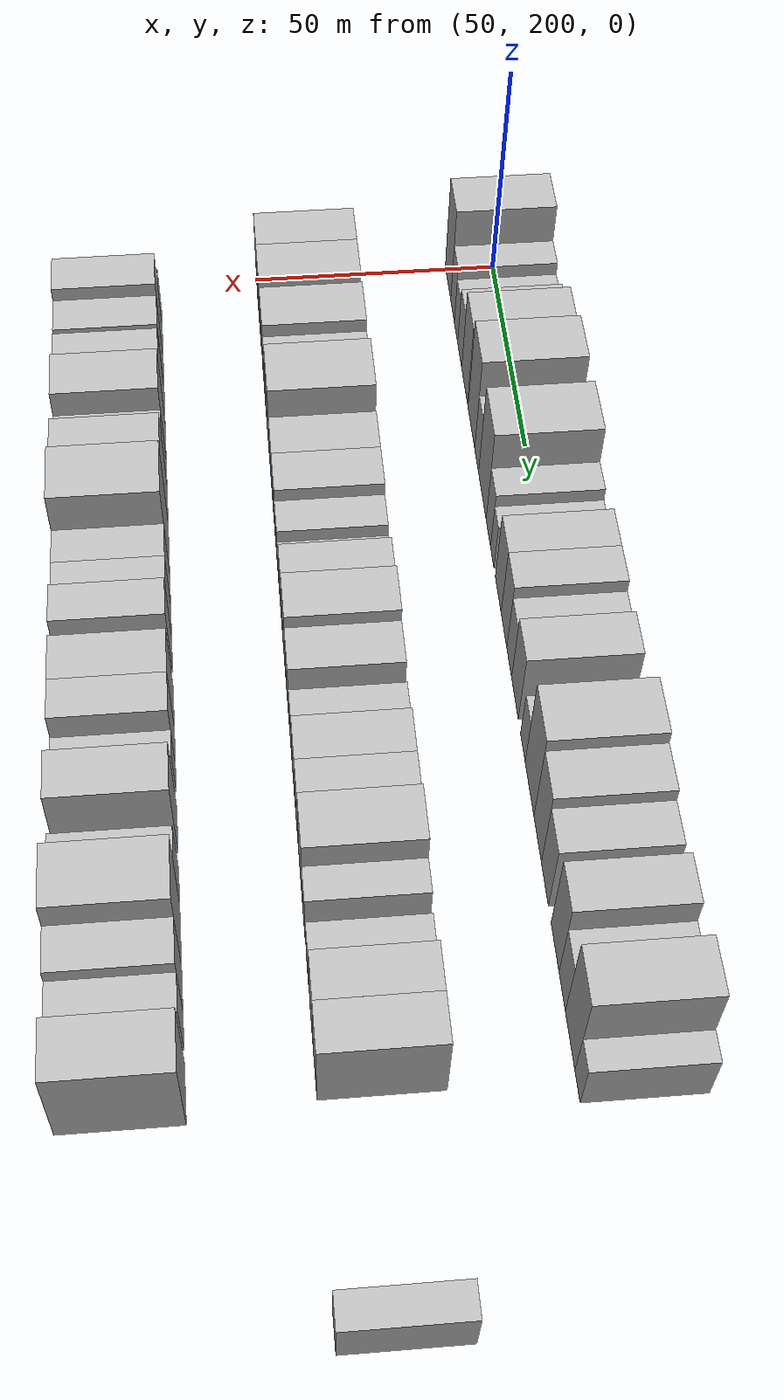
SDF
<sdf version="1.6">
 <world name="default">
  <model name="building_65">
   <static>1</static>
   <pose>50.0000 203.9485 0 0.000000 0.000000 0.000000</pose>
   <link name="link">
    <pose>0 0 12.00 0 0 0</pose>
    <collision name="collision"><geometry><box><size>20.0000 9.9118 24.0000</size></box></geometry></collision>
    <visual name="visual">
     <cast_shadows>0</cast_shadows>
     <geometry><box><size>20.0000 9.9118 24.0000</size></box></geometry>
     <material>
      <script>
       <uri>model://HANNAS_wall/materials/scripts</uri>
       <uri>model://HANNAS_wall/materials/textures</uri>
       <name>vrc/HANNAS_wall</name>
      </script>
     </material>
    </visual>
   </link>
  </model>
  <model name="building_66">
   <static>1</static>
   <pose>50.0000 212.1673 0 0.000000 0.000000 0.000000</pose>
   <link name="link">
    <pose>0 0 7.50 0 0 0</pose>
    <collision name="collision"><geometry><box><size>20.0000 6.5257 15.0000</size></box></geometry></collision>
    <visual name="visual">
     <cast_shadows>0</cast_shadows>
     <geometry><box><size>20.0000 6.5257 15.0000</size></box></geometry>
     <material>
      <script>
       <uri>model://HANNAS_wall/materials/scripts</uri>
       <uri>model://HANNAS_wall/materials/textures</uri>
       <name>vrc/HANNAS_wall</name>
      </script>
     </material>
    </visual>
   </link>
  </model>
  <model name="building_67">
   <static>1</static>
   <pose>50.0000 218.3779 0 0.000000 0.000000 0.000000</pose>
   <link name="link">
    <pose>0 0 6.00 0 0 0</pose>
    <collision name="collision"><geometry><box><size>20.0000 5.8955 12.0000</size></box></geometry></collision>
    <visual name="visual">
     <cast_shadows>0</cast_shadows>
     <geometry><box><size>20.0000 5.8955 12.0000</size></box></geometry>
     <material>
      <script>
       <uri>model://HANNAS_wall/materials/scripts</uri>
       <uri>model://HANNAS_wall/materials/textures</uri>
       <name>vrc/HANNAS_wall</name>
      </script>
     </material>
    </visual>
   </link>
  </model>
  <model name="building_68">
   <static>1</static>
   <pose>50.0000 224.8252 0 0.000000 0.000000 0.000000</pose>
   <link name="link">
    <pose>0 0 7.50 0 0 0</pose>
    <collision name="collision"><geometry><box><size>20.0000 6.9992 15.0000</size></box></geometry></collision>
    <visual name="visual">
     <cast_shadows>0</cast_shadows>
     <geometry><box><size>20.0000 6.9992 15.0000</size></box></geometry>
     <material>
      <script>
       <uri>model://HANNAS_wall/materials/scripts</uri>
       <uri>model://HANNAS_wall/materials/textures</uri>
       <name>vrc/HANNAS_wall</name>
      </script>
     </material>
    </visual>
   </link>
  </model>
  <model name="building_69">
   <static>1</static>
   <pose>50.0000 233.1686 0 0.000000 0.000000 0.000000</pose>
   <link name="link">
    <pose>0 0 10.50 0 0 0</pose>
    <collision name="collision"><geometry><box><size>20.0000 9.6877 21.0000</size></box></geometry></collision>
    <visual name="visual">
     <cast_shadows>0</cast_shadows>
     <geometry><box><size>20.0000 9.6877 21.0000</size></box></geometry>
     <material>
      <script>
       <uri>model://HANNAS_wall/materials/scripts</uri>
       <uri>model://HANNAS_wall/materials/textures</uri>
       <name>vrc/HANNAS_wall</name>
      </script>
     </material>
    </visual>
   </link>
  </model>
  <model name="building_70">
   <static>1</static>
   <pose>50.0000 244.3848 0 0.000000 0.000000 0.000000</pose>
   <link name="link">
    <pose>0 0 12.00 0 0 0</pose>
    <collision name="collision"><geometry><box><size>20.0000 10.7445 24.0000</size></box></geometry></collision>
    <visual name="visual">
     <cast_shadows>0</cast_shadows>
     <geometry><box><size>20.0000 10.7445 24.0000</size></box></geometry>
     <material>
      <script>
       <uri>model://HANNAS_wall/materials/scripts</uri>
       <uri>model://HANNAS_wall/materials/textures</uri>
       <name>vrc/HANNAS_wall</name>
      </script>
     </material>
    </visual>
   </link>
  </model>
  <model name="building_71">
   <static>1</static>
   <pose>50.0000 252.8541 0 0.000000 0.000000 0.000000</pose>
   <link name="link">
    <pose>0 0 7.50 0 0 0</pose>
    <collision name="collision"><geometry><box><size>20.0000 6.1942 15.0000</size></box></geometry></collision>
    <visual name="visual">
     <cast_shadows>0</cast_shadows>
     <geometry><box><size>20.0000 6.1942 15.0000</size></box></geometry>
     <material>
      <script>
       <uri>model://HANNAS_wall/materials/scripts</uri>
       <uri>model://HANNAS_wall/materials/textures</uri>
       <name>vrc/HANNAS_wall</name>
      </script>
     </material>
    </visual>
   </link>
  </model>
  <model name="building_72">
   <static>1</static>
   <pose>50.0000 261.8027 0 0.000000 0.000000 0.000000</pose>
   <link name="link">
    <pose>0 0 12.00 0 0 0</pose>
    <collision name="collision"><geometry><box><size>20.0000 11.7029 24.0000</size></box></geometry></collision>
    <visual name="visual">
     <cast_shadows>0</cast_shadows>
     <geometry><box><size>20.0000 11.7029 24.0000</size></box></geometry>
     <material>
      <script>
       <uri>model://HANNAS_wall/materials/scripts</uri>
       <uri>model://HANNAS_wall/materials/textures</uri>
       <name>vrc/HANNAS_wall</name>
      </script>
     </material>
    </visual>
   </link>
  </model>
  <model name="building_73">
   <static>1</static>
   <pose>50.0000 270.9502 0 0.000000 0.000000 0.000000</pose>
   <link name="link">
    <pose>0 0 7.50 0 0 0</pose>
    <collision name="collision"><geometry><box><size>20.0000 6.5921 15.0000</size></box></geometry></collision>
    <visual name="visual">
     <cast_shadows>0</cast_shadows>
     <geometry><box><size>20.0000 6.5921 15.0000</size></box></geometry>
     <material>
      <script>
       <uri>model://HANNAS_wall/materials/scripts</uri>
       <uri>model://HANNAS_wall/materials/textures</uri>
       <name>vrc/HANNAS_wall</name>
      </script>
     </material>
    </visual>
   </link>
  </model>
  <model name="building_74">
   <static>1</static>
   <pose>50.0000 276.7203 0 0.000000 0.000000 0.000000</pose>
   <link name="link">
    <pose>0 0 6.00 0 0 0</pose>
    <collision name="collision"><geometry><box><size>20.0000 4.9481 12.0000</size></box></geometry></collision>
    <visual name="visual">
     <cast_shadows>0</cast_shadows>
     <geometry><box><size>20.0000 4.9481 12.0000</size></box></geometry>
     <material>
      <script>
       <uri>model://HANNAS_wall/materials/scripts</uri>
       <uri>model://HANNAS_wall/materials/textures</uri>
       <name>vrc/HANNAS_wall</name>
      </script>
     </material>
    </visual>
   </link>
  </model>
  <model name="building_75">
   <static>1</static>
   <pose>50.0000 285.3222 0 0.000000 0.000000 0.000000</pose>
   <link name="link">
    <pose>0 0 9.00 0 0 0</pose>
    <collision name="collision"><geometry><box><size>20.0000 8.2556 18.0000</size></box></geometry></collision>
    <visual name="visual">
     <cast_shadows>0</cast_shadows>
     <geometry><box><size>20.0000 8.2556 18.0000</size></box></geometry>
     <material>
      <script>
       <uri>model://HANNAS_wall/materials/scripts</uri>
       <uri>model://HANNAS_wall/materials/textures</uri>
       <name>vrc/HANNAS_wall</name>
      </script>
     </material>
    </visual>
   </link>
  </model>
  <model name="building_76">
   <static>1</static>
   <pose>50.0000 293.3269 0 0.000000 0.000000 0.000000</pose>
   <link name="link">
    <pose>0 0 9.00 0 0 0</pose>
    <collision name="collision"><geometry><box><size>20.0000 7.7539 18.0000</size></box></geometry></collision>
    <visual name="visual">
     <cast_shadows>0</cast_shadows>
     <geometry><box><size>20.0000 7.7539 18.0000</size></box></geometry>
     <material>
      <script>
       <uri>model://HANNAS_wall/materials/scripts</uri>
       <uri>model://HANNAS_wall/materials/textures</uri>
       <name>vrc/HANNAS_wall</name>
      </script>
     </material>
    </visual>
   </link>
  </model>
  <model name="building_77">
   <static>1</static>
   <pose>50.0000 300.4628 0 0.000000 0.000000 0.000000</pose>
   <link name="link">
    <pose>0 0 7.50 0 0 0</pose>
    <collision name="collision"><geometry><box><size>20.0000 6.5179 15.0000</size></box></geometry></collision>
    <visual name="visual">
     <cast_shadows>0</cast_shadows>
     <geometry><box><size>20.0000 6.5179 15.0000</size></box></geometry>
     <material>
      <script>
       <uri>model://HANNAS_wall/materials/scripts</uri>
       <uri>model://HANNAS_wall/materials/textures</uri>
       <name>vrc/HANNAS_wall</name>
      </script>
     </material>
    </visual>
   </link>
  </model>
  <model name="building_78">
   <static>1</static>
   <pose>50.0000 308.0849 0 0.000000 0.000000 0.000000</pose>
   <link name="link">
    <pose>0 0 9.00 0 0 0</pose>
    <collision name="collision"><geometry><box><size>20.0000 8.7263 18.0000</size></box></geometry></collision>
    <visual name="visual">
     <cast_shadows>0</cast_shadows>
     <geometry><box><size>20.0000 8.7263 18.0000</size></box></geometry>
     <material>
      <script>
       <uri>model://HANNAS_wall/materials/scripts</uri>
       <uri>model://HANNAS_wall/materials/textures</uri>
       <name>vrc/HANNAS_wall</name>
      </script>
     </material>
    </visual>
   </link>
  </model>
  <model name="building_79">
   <static>1</static>
   <pose>50.0000 318.3146 0 0.000000 0.000000 0.000000</pose>
   <link name="link">
    <pose>0 0 6.00 0 0 0</pose>
    <collision name="collision"><geometry><box><size>20.0000 5.7333 12.0000</size></box></geometry></collision>
    <visual name="visual">
     <cast_shadows>0</cast_shadows>
     <geometry><box><size>20.0000 5.7333 12.0000</size></box></geometry>
     <material>
      <script>
       <uri>model://HANNAS_wall/materials/scripts</uri>
       <uri>model://HANNAS_wall/materials/textures</uri>
       <name>vrc/HANNAS_wall</name>
      </script>
     </material>
    </visual>
   </link>
  </model>
  <model name="building_80">
   <static>1</static>
   <pose>50.0000 326.5542 0 0.000000 0.000000 0.000000</pose>
   <link name="link">
    <pose>0 0 12.00 0 0 0</pose>
    <collision name="collision"><geometry><box><size>20.0000 10.7458 24.0000</size></box></geometry></collision>
    <visual name="visual">
     <cast_shadows>0</cast_shadows>
     <geometry><box><size>20.0000 10.7458 24.0000</size></box></geometry>
     <material>
      <script>
       <uri>model://HANNAS_wall/materials/scripts</uri>
       <uri>model://HANNAS_wall/materials/textures</uri>
       <name>vrc/HANNAS_wall</name>
      </script>
     </material>
    </visual>
   </link>
  </model>
  <model name="building_81">
   <static>1</static>
   <pose>50.0000 336.3348 0 0.000000 0.000000 0.000000</pose>
   <link name="link">
    <pose>0 0 10.50 0 0 0</pose>
    <collision name="collision"><geometry><box><size>20.0000 8.8155 21.0000</size></box></geometry></collision>
    <visual name="visual">
     <cast_shadows>0</cast_shadows>
     <geometry><box><size>20.0000 8.8155 21.0000</size></box></geometry>
     <material>
      <script>
       <uri>model://HANNAS_wall/materials/scripts</uri>
       <uri>model://HANNAS_wall/materials/textures</uri>
       <name>vrc/HANNAS_wall</name>
      </script>
     </material>
    </visual>
   </link>
  </model>
  <model name="building_82">
   <static>1</static>
   <pose>50.0000 344.7372 0 0.000000 0.000000 0.000000</pose>
   <link name="link">
    <pose>0 0 9.00 0 0 0</pose>
    <collision name="collision"><geometry><box><size>20.0000 7.9893 18.0000</size></box></geometry></collision>
    <visual name="visual">
     <cast_shadows>0</cast_shadows>
     <geometry><box><size>20.0000 7.9893 18.0000</size></box></geometry>
     <material>
      <script>
       <uri>model://HANNAS_wall/materials/scripts</uri>
       <uri>model://HANNAS_wall/materials/textures</uri>
       <name>vrc/HANNAS_wall</name>
      </script>
     </material>
    </visual>
   </link>
  </model>
  <model name="building_83">
   <static>1</static>
   <pose>50.0000 356.0353 0 0.000000 0.000000 0.000000</pose>
   <link name="link">
    <pose>0 0 10.50 0 0 0</pose>
    <collision name="collision"><geometry><box><size>20.0000 8.6068 21.0000</size></box></geometry></collision>
    <visual name="visual">
     <cast_shadows>0</cast_shadows>
     <geometry><box><size>20.0000 8.6068 21.0000</size></box></geometry>
     <material>
      <script>
       <uri>model://HANNAS_wall/materials/scripts</uri>
       <uri>model://HANNAS_wall/materials/textures</uri>
       <name>vrc/HANNAS_wall</name>
      </script>
     </material>
    </visual>
   </link>
  </model>
  <model name="building_84">
   <static>1</static>
   <pose>50.0000 363.6869 0 0.000000 0.000000 0.000000</pose>
   <link name="link">
    <pose>0 0 7.50 0 0 0</pose>
    <collision name="collision"><geometry><box><size>20.0000 6.6964 15.0000</size></box></geometry></collision>
    <visual name="visual">
     <cast_shadows>0</cast_shadows>
     <geometry><box><size>20.0000 6.6964 15.0000</size></box></geometry>
     <material>
      <script>
       <uri>model://HANNAS_wall/materials/scripts</uri>
       <uri>model://HANNAS_wall/materials/textures</uri>
       <name>vrc/HANNAS_wall</name>
      </script>
     </material>
    </visual>
   </link>
  </model>
  <model name="building_85">
   <static>1</static>
   <pose>50.0000 371.9090 0 0.000000 0.000000 0.000000</pose>
   <link name="link">
    <pose>0 0 12.00 0 0 0</pose>
    <collision name="collision"><geometry><box><size>20.0000 9.7478 24.0000</size></box></geometry></collision>
    <visual name="visual">
     <cast_shadows>0</cast_shadows>
     <geometry><box><size>20.0000 9.7478 24.0000</size></box></geometry>
     <material>
      <script>
       <uri>model://HANNAS_wall/materials/scripts</uri>
       <uri>model://HANNAS_wall/materials/textures</uri>
       <name>vrc/HANNAS_wall</name>
      </script>
     </material>
    </visual>
   </link>
  </model>
  <model name="building_86">
   <static>1</static>
   <pose>50.0000 379.3888 0 0.000000 0.000000 0.000000</pose>
   <link name="link">
    <pose>0 0 6.00 0 0 0</pose>
    <collision name="collision"><geometry><box><size>20.0000 5.2118 12.0000</size></box></geometry></collision>
    <visual name="visual">
     <cast_shadows>0</cast_shadows>
     <geometry><box><size>20.0000 5.2118 12.0000</size></box></geometry>
     <material>
      <script>
       <uri>model://HANNAS_wall/materials/scripts</uri>
       <uri>model://HANNAS_wall/materials/textures</uri>
       <name>vrc/HANNAS_wall</name>
      </script>
     </material>
    </visual>
   </link>
  </model>
  <model name="building_146">
   <static>1</static>
   <pose>90.0000 207.2718 0 0.000000 0.000000 0.000000</pose>
   <link name="link">
    <pose>0 0 10.50 0 0 0</pose>
    <collision name="collision"><geometry><box><size>20.0000 9.0119 21.0000</size></box></geometry></collision>
    <visual name="visual">
     <cast_shadows>0</cast_shadows>
     <geometry><box><size>20.0000 9.0119 21.0000</size></box></geometry>
     <material>
      <script>
       <uri>model://HANNAS_wall/materials/scripts</uri>
       <uri>model://HANNAS_wall/materials/textures</uri>
       <name>vrc/HANNAS_wall</name>
      </script>
     </material>
    </visual>
   </link>
  </model>
  <model name="building_147">
   <static>1</static>
   <pose>90.0000 216.2913 0 0.000000 0.000000 0.000000</pose>
   <link name="link">
    <pose>0 0 10.50 0 0 0</pose>
    <collision name="collision"><geometry><box><size>20.0000 9.0270 21.0000</size></box></geometry></collision>
    <visual name="visual">
     <cast_shadows>0</cast_shadows>
     <geometry><box><size>20.0000 9.0270 21.0000</size></box></geometry>
     <material>
      <script>
       <uri>model://HANNAS_wall/materials/scripts</uri>
       <uri>model://HANNAS_wall/materials/textures</uri>
       <name>vrc/HANNAS_wall</name>
      </script>
     </material>
    </visual>
   </link>
  </model>
  <model name="building_148">
   <static>1</static>
   <pose>90.0000 228.9476 0 0.000000 0.000000 0.000000</pose>
   <link name="link">
    <pose>0 0 10.50 0 0 0</pose>
    <collision name="collision"><geometry><box><size>20.0000 10.2856 21.0000</size></box></geometry></collision>
    <visual name="visual">
     <cast_shadows>0</cast_shadows>
     <geometry><box><size>20.0000 10.2856 21.0000</size></box></geometry>
     <material>
      <script>
       <uri>model://HANNAS_wall/materials/scripts</uri>
       <uri>model://HANNAS_wall/materials/textures</uri>
       <name>vrc/HANNAS_wall</name>
      </script>
     </material>
    </visual>
   </link>
  </model>
  <model name="building_149">
   <static>1</static>
   <pose>90.0000 237.9850 0 0.000000 0.000000 0.000000</pose>
   <link name="link">
    <pose>0 0 9.00 0 0 0</pose>
    <collision name="collision"><geometry><box><size>20.0000 7.7891 18.0000</size></box></geometry></collision>
    <visual name="visual">
     <cast_shadows>0</cast_shadows>
     <geometry><box><size>20.0000 7.7891 18.0000</size></box></geometry>
     <material>
      <script>
       <uri>model://HANNAS_wall/materials/scripts</uri>
       <uri>model://HANNAS_wall/materials/textures</uri>
       <name>vrc/HANNAS_wall</name>
      </script>
     </material>
    </visual>
   </link>
  </model>
  <model name="building_150">
   <static>1</static>
   <pose>90.0000 247.7999 0 0.000000 0.000000 0.000000</pose>
   <link name="link">
    <pose>0 0 12.00 0 0 0</pose>
    <collision name="collision"><geometry><box><size>20.0000 11.8408 24.0000</size></box></geometry></collision>
    <visual name="visual">
     <cast_shadows>0</cast_shadows>
     <geometry><box><size>20.0000 11.8408 24.0000</size></box></geometry>
     <material>
      <script>
       <uri>model://HANNAS_wall/materials/scripts</uri>
       <uri>model://HANNAS_wall/materials/textures</uri>
       <name>vrc/HANNAS_wall</name>
      </script>
     </material>
    </visual>
   </link>
  </model>
  <model name="building_151">
   <static>1</static>
   <pose>90.0000 259.0928 0 0.000000 0.000000 0.000000</pose>
   <link name="link">
    <pose>0 0 9.00 0 0 0</pose>
    <collision name="collision"><geometry><box><size>20.0000 8.7450 18.0000</size></box></geometry></collision>
    <visual name="visual">
     <cast_shadows>0</cast_shadows>
     <geometry><box><size>20.0000 8.7450 18.0000</size></box></geometry>
     <material>
      <script>
       <uri>model://HANNAS_wall/materials/scripts</uri>
       <uri>model://HANNAS_wall/materials/textures</uri>
       <name>vrc/HANNAS_wall</name>
      </script>
     </material>
    </visual>
   </link>
  </model>
  <model name="building_152">
   <static>1</static>
   <pose>90.0000 267.8536 0 0.000000 0.000000 0.000000</pose>
   <link name="link">
    <pose>0 0 9.00 0 0 0</pose>
    <collision name="collision"><geometry><box><size>20.0000 8.7766 18.0000</size></box></geometry></collision>
    <visual name="visual">
     <cast_shadows>0</cast_shadows>
     <geometry><box><size>20.0000 8.7766 18.0000</size></box></geometry>
     <material>
      <script>
       <uri>model://HANNAS_wall/materials/scripts</uri>
       <uri>model://HANNAS_wall/materials/textures</uri>
       <name>vrc/HANNAS_wall</name>
      </script>
     </material>
    </visual>
   </link>
  </model>
  <model name="building_153">
   <static>1</static>
   <pose>90.0000 275.7923 0 0.000000 0.000000 0.000000</pose>
   <link name="link">
    <pose>0 0 7.50 0 0 0</pose>
    <collision name="collision"><geometry><box><size>20.0000 7.1009 15.0000</size></box></geometry></collision>
    <visual name="visual">
     <cast_shadows>0</cast_shadows>
     <geometry><box><size>20.0000 7.1009 15.0000</size></box></geometry>
     <material>
      <script>
       <uri>model://HANNAS_wall/materials/scripts</uri>
       <uri>model://HANNAS_wall/materials/textures</uri>
       <name>vrc/HANNAS_wall</name>
      </script>
     </material>
    </visual>
   </link>
  </model>
  <model name="building_154">
   <static>1</static>
   <pose>90.0000 281.9108 0 0.000000 0.000000 0.000000</pose>
   <link name="link">
    <pose>0 0 6.00 0 0 0</pose>
    <collision name="collision"><geometry><box><size>20.0000 5.1360 12.0000</size></box></geometry></collision>
    <visual name="visual">
     <cast_shadows>0</cast_shadows>
     <geometry><box><size>20.0000 5.1360 12.0000</size></box></geometry>
     <material>
      <script>
       <uri>model://HANNAS_wall/materials/scripts</uri>
       <uri>model://HANNAS_wall/materials/textures</uri>
       <name>vrc/HANNAS_wall</name>
      </script>
     </material>
    </visual>
   </link>
  </model>
  <model name="building_155">
   <static>1</static>
   <pose>90.0000 288.7648 0 0.000000 0.000000 0.000000</pose>
   <link name="link">
    <pose>0 0 9.00 0 0 0</pose>
    <collision name="collision"><geometry><box><size>20.0000 8.5720 18.0000</size></box></geometry></collision>
    <visual name="visual">
     <cast_shadows>0</cast_shadows>
     <geometry><box><size>20.0000 8.5720 18.0000</size></box></geometry>
     <material>
      <script>
       <uri>model://HANNAS_wall/materials/scripts</uri>
       <uri>model://HANNAS_wall/materials/textures</uri>
       <name>vrc/HANNAS_wall</name>
      </script>
     </material>
    </visual>
   </link>
  </model>
  <model name="building_156">
   <static>1</static>
   <pose>90.0000 297.7632 0 0.000000 0.000000 0.000000</pose>
   <link name="link">
    <pose>0 0 10.50 0 0 0</pose>
    <collision name="collision"><geometry><box><size>20.0000 9.4248 21.0000</size></box></geometry></collision>
    <visual name="visual">
     <cast_shadows>0</cast_shadows>
     <geometry><box><size>20.0000 9.4248 21.0000</size></box></geometry>
     <material>
      <script>
       <uri>model://HANNAS_wall/materials/scripts</uri>
       <uri>model://HANNAS_wall/materials/textures</uri>
       <name>vrc/HANNAS_wall</name>
      </script>
     </material>
    </visual>
   </link>
  </model>
  <model name="building_157">
   <static>1</static>
   <pose>90.0000 306.7632 0 0.000000 0.000000 0.000000</pose>
   <link name="link">
    <pose>0 0 9.00 0 0 0</pose>
    <collision name="collision"><geometry><box><size>20.0000 8.5753 18.0000</size></box></geometry></collision>
    <visual name="visual">
     <cast_shadows>0</cast_shadows>
     <geometry><box><size>20.0000 8.5753 18.0000</size></box></geometry>
     <material>
      <script>
       <uri>model://HANNAS_wall/materials/scripts</uri>
       <uri>model://HANNAS_wall/materials/textures</uri>
       <name>vrc/HANNAS_wall</name>
      </script>
     </material>
    </visual>
   </link>
  </model>
  <model name="building_158">
   <static>1</static>
   <pose>90.0000 316.6000 0 0.000000 0.000000 0.000000</pose>
   <link name="link">
    <pose>0 0 7.50 0 0 0</pose>
    <collision name="collision"><geometry><box><size>20.0000 7.0983 15.0000</size></box></geometry></collision>
    <visual name="visual">
     <cast_shadows>0</cast_shadows>
     <geometry><box><size>20.0000 7.0983 15.0000</size></box></geometry>
     <material>
      <script>
       <uri>model://HANNAS_wall/materials/scripts</uri>
       <uri>model://HANNAS_wall/materials/textures</uri>
       <name>vrc/HANNAS_wall</name>
      </script>
     </material>
    </visual>
   </link>
  </model>
  <model name="building_159">
   <static>1</static>
   <pose>90.0000 324.2879 0 0.000000 0.000000 0.000000</pose>
   <link name="link">
    <pose>0 0 9.00 0 0 0</pose>
    <collision name="collision"><geometry><box><size>20.0000 8.2775 18.0000</size></box></geometry></collision>
    <visual name="visual">
     <cast_shadows>0</cast_shadows>
     <geometry><box><size>20.0000 8.2775 18.0000</size></box></geometry>
     <material>
      <script>
       <uri>model://HANNAS_wall/materials/scripts</uri>
       <uri>model://HANNAS_wall/materials/textures</uri>
       <name>vrc/HANNAS_wall</name>
      </script>
     </material>
    </visual>
   </link>
  </model>
  <model name="building_160">
   <static>1</static>
   <pose>90.0000 332.3970 0 0.000000 0.000000 0.000000</pose>
   <link name="link">
    <pose>0 0 9.00 0 0 0</pose>
    <collision name="collision"><geometry><box><size>20.0000 7.9408 18.0000</size></box></geometry></collision>
    <visual name="visual">
     <cast_shadows>0</cast_shadows>
     <geometry><box><size>20.0000 7.9408 18.0000</size></box></geometry>
     <material>
      <script>
       <uri>model://HANNAS_wall/materials/scripts</uri>
       <uri>model://HANNAS_wall/materials/textures</uri>
       <name>vrc/HANNAS_wall</name>
      </script>
     </material>
    </visual>
   </link>
  </model>
  <model name="building_161">
   <static>1</static>
   <pose>90.0000 341.3139 0 0.000000 0.000000 0.000000</pose>
   <link name="link">
    <pose>0 0 10.50 0 0 0</pose>
    <collision name="collision"><geometry><box><size>20.0000 9.8929 21.0000</size></box></geometry></collision>
    <visual name="visual">
     <cast_shadows>0</cast_shadows>
     <geometry><box><size>20.0000 9.8929 21.0000</size></box></geometry>
     <material>
      <script>
       <uri>model://HANNAS_wall/materials/scripts</uri>
       <uri>model://HANNAS_wall/materials/textures</uri>
       <name>vrc/HANNAS_wall</name>
      </script>
     </material>
    </visual>
   </link>
  </model>
  <model name="building_162">
   <static>1</static>
   <pose>90.0000 349.3207 0 0.000000 0.000000 0.000000</pose>
   <link name="link">
    <pose>0 0 7.50 0 0 0</pose>
    <collision name="collision"><geometry><box><size>20.0000 6.1208 15.0000</size></box></geometry></collision>
    <visual name="visual">
     <cast_shadows>0</cast_shadows>
     <geometry><box><size>20.0000 6.1208 15.0000</size></box></geometry>
     <material>
      <script>
       <uri>model://HANNAS_wall/materials/scripts</uri>
       <uri>model://HANNAS_wall/materials/textures</uri>
       <name>vrc/HANNAS_wall</name>
      </script>
     </material>
    </visual>
   </link>
  </model>
  <model name="building_163">
   <static>1</static>
   <pose>90.0000 357.1309 0 0.000000 0.000000 0.000000</pose>
   <link name="link">
    <pose>0 0 6.00 0 0 0</pose>
    <collision name="collision"><geometry><box><size>20.0000 5.4995 12.0000</size></box></geometry></collision>
    <visual name="visual">
     <cast_shadows>0</cast_shadows>
     <geometry><box><size>20.0000 5.4995 12.0000</size></box></geometry>
     <material>
      <script>
       <uri>model://HANNAS_wall/materials/scripts</uri>
       <uri>model://HANNAS_wall/materials/textures</uri>
       <name>vrc/HANNAS_wall</name>
      </script>
     </material>
    </visual>
   </link>
  </model>
  <model name="building_164">
   <static>1</static>
   <pose>90.0000 365.9483 0 0.000000 0.000000 0.000000</pose>
   <link name="link">
    <pose>0 0 9.00 0 0 0</pose>
    <collision name="collision"><geometry><box><size>20.0000 8.1355 18.0000</size></box></geometry></collision>
    <visual name="visual">
     <cast_shadows>0</cast_shadows>
     <geometry><box><size>20.0000 8.1355 18.0000</size></box></geometry>
     <material>
      <script>
       <uri>model://HANNAS_wall/materials/scripts</uri>
       <uri>model://HANNAS_wall/materials/textures</uri>
       <name>vrc/HANNAS_wall</name>
      </script>
     </material>
    </visual>
   </link>
  </model>
  <model name="building_165">
   <static>1</static>
   <pose>90.0000 374.2203 0 0.000000 0.000000 0.000000</pose>
   <link name="link">
    <pose>0 0 9.00 0 0 0</pose>
    <collision name="collision"><geometry><box><size>20.0000 8.4084 18.0000</size></box></geometry></collision>
    <visual name="visual">
     <cast_shadows>0</cast_shadows>
     <geometry><box><size>20.0000 8.4084 18.0000</size></box></geometry>
     <material>
      <script>
       <uri>model://HANNAS_wall/materials/scripts</uri>
       <uri>model://HANNAS_wall/materials/textures</uri>
       <name>vrc/HANNAS_wall</name>
      </script>
     </material>
    </visual>
   </link>
  </model>
  <model name="building_166">
   <static>1</static>
   <pose>90.0000 412.8817 0 0.000000 0.000000 0.000000</pose>
   <link name="link">
    <pose>0 0 6.00 0 0 0</pose>
    <collision name="collision"><geometry><box><size>20.0000 5.6382 12.0000</size></box></geometry></collision>
    <visual name="visual">
     <cast_shadows>0</cast_shadows>
     <geometry><box><size>20.0000 5.6382 12.0000</size></box></geometry>
     <material>
      <script>
       <uri>model://HANNAS_wall/materials/scripts</uri>
       <uri>model://HANNAS_wall/materials/textures</uri>
       <name>vrc/HANNAS_wall</name>
      </script>
     </material>
    </visual>
   </link>
  </model>
  <model name="building_231">
   <static>1</static>
   <pose>130.0000 210.1828 0 0.000000 0.000000 0.000000</pose>
   <link name="link">
    <pose>0 0 6.00 0 0 0</pose>
    <collision name="collision"><geometry><box><size>20.0000 5.0578 12.0000</size></box></geometry></collision>
    <visual name="visual">
     <cast_shadows>0</cast_shadows>
     <geometry><box><size>20.0000 5.0578 12.0000</size></box></geometry>
     <material>
      <script>
       <uri>model://HANNAS_wall/materials/scripts</uri>
       <uri>model://HANNAS_wall/materials/textures</uri>
       <name>vrc/HANNAS_wall</name>
      </script>
     </material>
    </visual>
   </link>
  </model>
  <model name="building_232">
   <static>1</static>
   <pose>130.0000 216.9705 0 0.000000 0.000000 0.000000</pose>
   <link name="link">
    <pose>0 0 10.50 0 0 0</pose>
    <collision name="collision"><geometry><box><size>20.0000 8.5175 21.0000</size></box></geometry></collision>
    <visual name="visual">
     <cast_shadows>0</cast_shadows>
     <geometry><box><size>20.0000 8.5175 21.0000</size></box></geometry>
     <material>
      <script>
       <uri>model://HANNAS_wall/materials/scripts</uri>
       <uri>model://HANNAS_wall/materials/textures</uri>
       <name>vrc/HANNAS_wall</name>
      </script>
     </material>
    </visual>
   </link>
  </model>
  <model name="building_233">
   <static>1</static>
   <pose>130.0000 225.1977 0 0.000000 0.000000 0.000000</pose>
   <link name="link">
    <pose>0 0 9.00 0 0 0</pose>
    <collision name="collision"><geometry><box><size>20.0000 7.9368 18.0000</size></box></geometry></collision>
    <visual name="visual">
     <cast_shadows>0</cast_shadows>
     <geometry><box><size>20.0000 7.9368 18.0000</size></box></geometry>
     <material>
      <script>
       <uri>model://HANNAS_wall/materials/scripts</uri>
       <uri>model://HANNAS_wall/materials/textures</uri>
       <name>vrc/HANNAS_wall</name>
      </script>
     </material>
    </visual>
   </link>
  </model>
  <model name="building_234">
   <static>1</static>
   <pose>130.0000 234.3227 0 0.000000 0.000000 0.000000</pose>
   <link name="link">
    <pose>0 0 9.00 0 0 0</pose>
    <collision name="collision"><geometry><box><size>20.0000 8.3133 18.0000</size></box></geometry></collision>
    <visual name="visual">
     <cast_shadows>0</cast_shadows>
     <geometry><box><size>20.0000 8.3133 18.0000</size></box></geometry>
     <material>
      <script>
       <uri>model://HANNAS_wall/materials/scripts</uri>
       <uri>model://HANNAS_wall/materials/textures</uri>
       <name>vrc/HANNAS_wall</name>
      </script>
     </material>
    </visual>
   </link>
  </model>
  <model name="building_235">
   <static>1</static>
   <pose>130.0000 243.5068 0 0.000000 0.000000 0.000000</pose>
   <link name="link">
    <pose>0 0 10.50 0 0 0</pose>
    <collision name="collision"><geometry><box><size>20.0000 10.0550 21.0000</size></box></geometry></collision>
    <visual name="visual">
     <cast_shadows>0</cast_shadows>
     <geometry><box><size>20.0000 10.0550 21.0000</size></box></geometry>
     <material>
      <script>
       <uri>model://HANNAS_wall/materials/scripts</uri>
       <uri>model://HANNAS_wall/materials/textures</uri>
       <name>vrc/HANNAS_wall</name>
      </script>
     </material>
    </visual>
   </link>
  </model>
  <model name="building_236">
   <static>1</static>
   <pose>130.0000 251.5854 0 0.000000 0.000000 0.000000</pose>
   <link name="link">
    <pose>0 0 7.50 0 0 0</pose>
    <collision name="collision"><geometry><box><size>20.0000 6.1021 15.0000</size></box></geometry></collision>
    <visual name="visual">
     <cast_shadows>0</cast_shadows>
     <geometry><box><size>20.0000 6.1021 15.0000</size></box></geometry>
     <material>
      <script>
       <uri>model://HANNAS_wall/materials/scripts</uri>
       <uri>model://HANNAS_wall/materials/textures</uri>
       <name>vrc/HANNAS_wall</name>
      </script>
     </material>
    </visual>
   </link>
  </model>
  <model name="building_237">
   <static>1</static>
   <pose>130.0000 259.3164 0 0.000000 0.000000 0.000000</pose>
   <link name="link">
    <pose>0 0 10.50 0 0 0</pose>
    <collision name="collision"><geometry><box><size>20.0000 9.3600 21.0000</size></box></geometry></collision>
    <visual name="visual">
     <cast_shadows>0</cast_shadows>
     <geometry><box><size>20.0000 9.3600 21.0000</size></box></geometry>
     <material>
      <script>
       <uri>model://HANNAS_wall/materials/scripts</uri>
       <uri>model://HANNAS_wall/materials/textures</uri>
       <name>vrc/HANNAS_wall</name>
      </script>
     </material>
    </visual>
   </link>
  </model>
  <model name="building_238">
   <static>1</static>
   <pose>130.0000 269.9337 0 0.000000 0.000000 0.000000</pose>
   <link name="link">
    <pose>0 0 12.00 0 0 0</pose>
    <collision name="collision"><geometry><box><size>20.0000 11.8745 24.0000</size></box></geometry></collision>
    <visual name="visual">
     <cast_shadows>0</cast_shadows>
     <geometry><box><size>20.0000 11.8745 24.0000</size></box></geometry>
     <material>
      <script>
       <uri>model://HANNAS_wall/materials/scripts</uri>
       <uri>model://HANNAS_wall/materials/textures</uri>
       <name>vrc/HANNAS_wall</name>
      </script>
     </material>
    </visual>
   </link>
  </model>
  <model name="building_239">
   <static>1</static>
   <pose>130.0000 279.4765 0 0.000000 0.000000 0.000000</pose>
   <link name="link">
    <pose>0 0 7.50 0 0 0</pose>
    <collision name="collision"><geometry><box><size>20.0000 7.2110 15.0000</size></box></geometry></collision>
    <visual name="visual">
     <cast_shadows>0</cast_shadows>
     <geometry><box><size>20.0000 7.2110 15.0000</size></box></geometry>
     <material>
      <script>
       <uri>model://HANNAS_wall/materials/scripts</uri>
       <uri>model://HANNAS_wall/materials/textures</uri>
       <name>vrc/HANNAS_wall</name>
      </script>
     </material>
    </visual>
   </link>
  </model>
  <model name="building_240">
   <static>1</static>
   <pose>130.0000 286.6499 0 0.000000 0.000000 0.000000</pose>
   <link name="link">
    <pose>0 0 7.50 0 0 0</pose>
    <collision name="collision"><geometry><box><size>20.0000 7.1359 15.0000</size></box></geometry></collision>
    <visual name="visual">
     <cast_shadows>0</cast_shadows>
     <geometry><box><size>20.0000 7.1359 15.0000</size></box></geometry>
     <material>
      <script>
       <uri>model://HANNAS_wall/materials/scripts</uri>
       <uri>model://HANNAS_wall/materials/textures</uri>
       <name>vrc/HANNAS_wall</name>
      </script>
     </material>
    </visual>
   </link>
  </model>
  <model name="building_241">
   <static>1</static>
   <pose>130.0000 294.0799 0 0.000000 0.000000 0.000000</pose>
   <link name="link">
    <pose>0 0 9.00 0 0 0</pose>
    <collision name="collision"><geometry><box><size>20.0000 7.7240 18.0000</size></box></geometry></collision>
    <visual name="visual">
     <cast_shadows>0</cast_shadows>
     <geometry><box><size>20.0000 7.7240 18.0000</size></box></geometry>
     <material>
      <script>
       <uri>model://HANNAS_wall/materials/scripts</uri>
       <uri>model://HANNAS_wall/materials/textures</uri>
       <name>vrc/HANNAS_wall</name>
      </script>
     </material>
    </visual>
   </link>
  </model>
  <model name="building_242">
   <static>1</static>
   <pose>130.0000 305.3790 0 0.000000 0.000000 0.000000</pose>
   <link name="link">
    <pose>0 0 9.00 0 0 0</pose>
    <collision name="collision"><geometry><box><size>20.0000 8.8742 18.0000</size></box></geometry></collision>
    <visual name="visual">
     <cast_shadows>0</cast_shadows>
     <geometry><box><size>20.0000 8.8742 18.0000</size></box></geometry>
     <material>
      <script>
       <uri>model://HANNAS_wall/materials/scripts</uri>
       <uri>model://HANNAS_wall/materials/textures</uri>
       <name>vrc/HANNAS_wall</name>
      </script>
     </material>
    </visual>
   </link>
  </model>
  <model name="building_243">
   <static>1</static>
   <pose>130.0000 313.6557 0 0.000000 0.000000 0.000000</pose>
   <link name="link">
    <pose>0 0 9.00 0 0 0</pose>
    <collision name="collision"><geometry><box><size>20.0000 7.6792 18.0000</size></box></geometry></collision>
    <visual name="visual">
     <cast_shadows>0</cast_shadows>
     <geometry><box><size>20.0000 7.6792 18.0000</size></box></geometry>
     <material>
      <script>
       <uri>model://HANNAS_wall/materials/scripts</uri>
       <uri>model://HANNAS_wall/materials/textures</uri>
       <name>vrc/HANNAS_wall</name>
      </script>
     </material>
    </visual>
   </link>
  </model>
  <model name="building_244">
   <static>1</static>
   <pose>130.0000 319.9872 0 0.000000 0.000000 0.000000</pose>
   <link name="link">
    <pose>0 0 6.00 0 0 0</pose>
    <collision name="collision"><geometry><box><size>20.0000 4.9837 12.0000</size></box></geometry></collision>
    <visual name="visual">
     <cast_shadows>0</cast_shadows>
     <geometry><box><size>20.0000 4.9837 12.0000</size></box></geometry>
     <material>
      <script>
       <uri>model://HANNAS_wall/materials/scripts</uri>
       <uri>model://HANNAS_wall/materials/textures</uri>
       <name>vrc/HANNAS_wall</name>
      </script>
     </material>
    </visual>
   </link>
  </model>
  <model name="building_245">
   <static>1</static>
   <pose>130.0000 329.8937 0 0.000000 0.000000 0.000000</pose>
   <link name="link">
    <pose>0 0 10.50 0 0 0</pose>
    <collision name="collision"><geometry><box><size>20.0000 8.8292 21.0000</size></box></geometry></collision>
    <visual name="visual">
     <cast_shadows>0</cast_shadows>
     <geometry><box><size>20.0000 8.8292 21.0000</size></box></geometry>
     <material>
      <script>
       <uri>model://HANNAS_wall/materials/scripts</uri>
       <uri>model://HANNAS_wall/materials/textures</uri>
       <name>vrc/HANNAS_wall</name>
      </script>
     </material>
    </visual>
   </link>
  </model>
  <model name="building_246">
   <static>1</static>
   <pose>130.0000 340.6033 0 0.000000 0.000000 0.000000</pose>
   <link name="link">
    <pose>0 0 7.50 0 0 0</pose>
    <collision name="collision"><geometry><box><size>20.0000 6.5899 15.0000</size></box></geometry></collision>
    <visual name="visual">
     <cast_shadows>0</cast_shadows>
     <geometry><box><size>20.0000 6.5899 15.0000</size></box></geometry>
     <material>
      <script>
       <uri>model://HANNAS_wall/materials/scripts</uri>
       <uri>model://HANNAS_wall/materials/textures</uri>
       <name>vrc/HANNAS_wall</name>
      </script>
     </material>
    </visual>
   </link>
  </model>
  <model name="building_247">
   <static>1</static>
   <pose>130.0000 349.3650 0 0.000000 0.000000 0.000000</pose>
   <link name="link">
    <pose>0 0 12.00 0 0 0</pose>
    <collision name="collision"><geometry><box><size>20.0000 10.9336 24.0000</size></box></geometry></collision>
    <visual name="visual">
     <cast_shadows>0</cast_shadows>
     <geometry><box><size>20.0000 10.9336 24.0000</size></box></geometry>
     <material>
      <script>
       <uri>model://HANNAS_wall/materials/scripts</uri>
       <uri>model://HANNAS_wall/materials/textures</uri>
       <name>vrc/HANNAS_wall</name>
      </script>
     </material>
    </visual>
   </link>
  </model>
  <model name="building_248">
   <static>1</static>
   <pose>130.0000 358.6862 0 0.000000 0.000000 0.000000</pose>
   <link name="link">
    <pose>0 0 9.00 0 0 0</pose>
    <collision name="collision"><geometry><box><size>20.0000 7.7089 18.0000</size></box></geometry></collision>
    <visual name="visual">
     <cast_shadows>0</cast_shadows>
     <geometry><box><size>20.0000 7.7089 18.0000</size></box></geometry>
     <material>
      <script>
       <uri>model://HANNAS_wall/materials/scripts</uri>
       <uri>model://HANNAS_wall/materials/textures</uri>
       <name>vrc/HANNAS_wall</name>
      </script>
     </material>
    </visual>
   </link>
  </model>
  <model name="building_249">
   <static>1</static>
   <pose>130.0000 365.7286 0 0.000000 0.000000 0.000000</pose>
   <link name="link">
    <pose>0 0 7.50 0 0 0</pose>
    <collision name="collision"><geometry><box><size>20.0000 6.3759 15.0000</size></box></geometry></collision>
    <visual name="visual">
     <cast_shadows>0</cast_shadows>
     <geometry><box><size>20.0000 6.3759 15.0000</size></box></geometry>
     <material>
      <script>
       <uri>model://HANNAS_wall/materials/scripts</uri>
       <uri>model://HANNAS_wall/materials/textures</uri>
       <name>vrc/HANNAS_wall</name>
      </script>
     </material>
    </visual>
   </link>
  </model>
  <model name="building_250">
   <static>1</static>
   <pose>130.0000 375.8448 0 0.000000 0.000000 0.000000</pose>
   <link name="link">
    <pose>0 0 10.50 0 0 0</pose>
    <collision name="collision"><geometry><box><size>20.0000 9.8564 21.0000</size></box></geometry></collision>
    <visual name="visual">
     <cast_shadows>0</cast_shadows>
     <geometry><box><size>20.0000 9.8564 21.0000</size></box></geometry>
     <material>
      <script>
       <uri>model://HANNAS_wall/materials/scripts</uri>
       <uri>model://HANNAS_wall/materials/textures</uri>
       <name>vrc/HANNAS_wall</name>
      </script>
     </material>
    </visual>
   </link>
  </model>
 </world>
</sdf>
